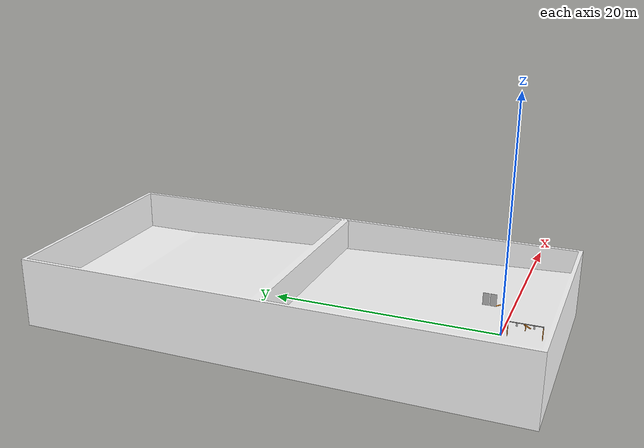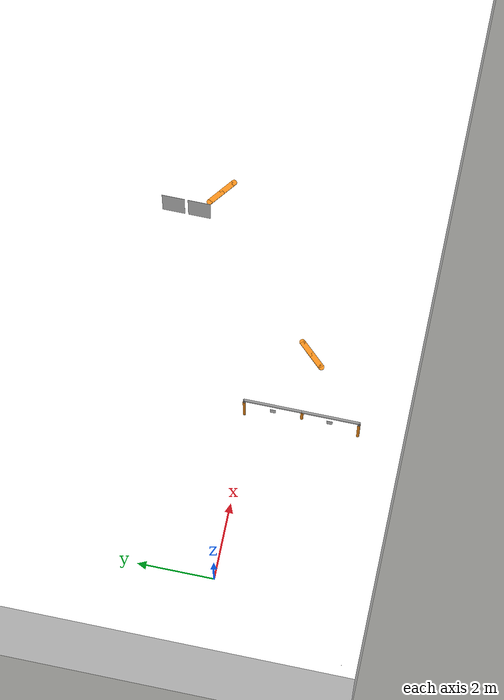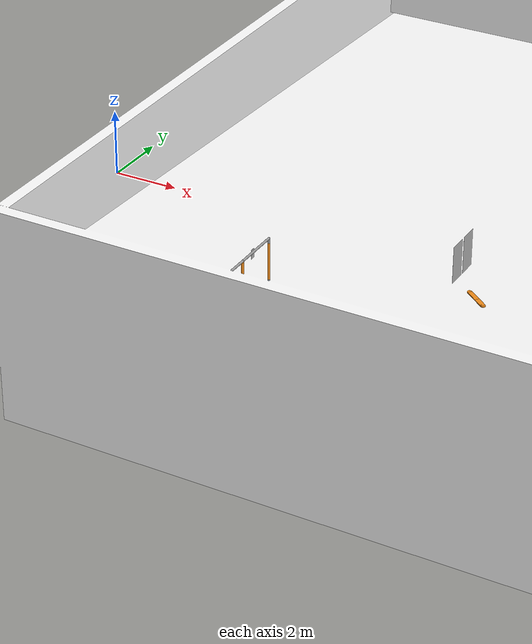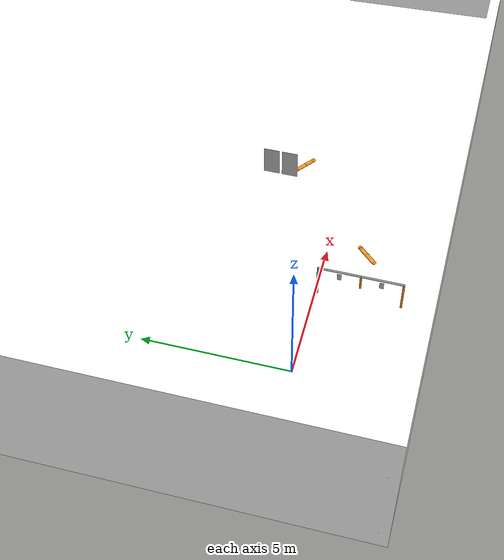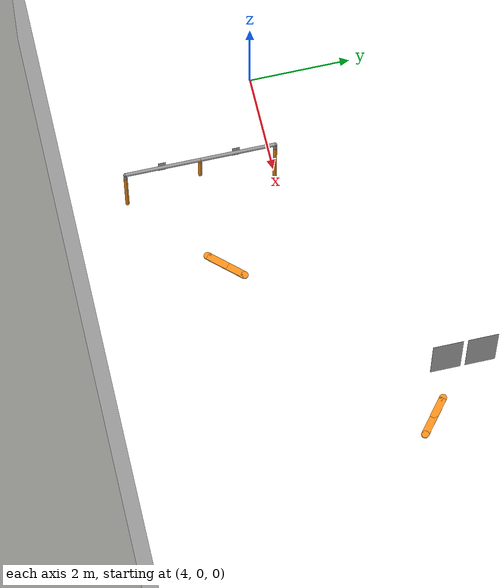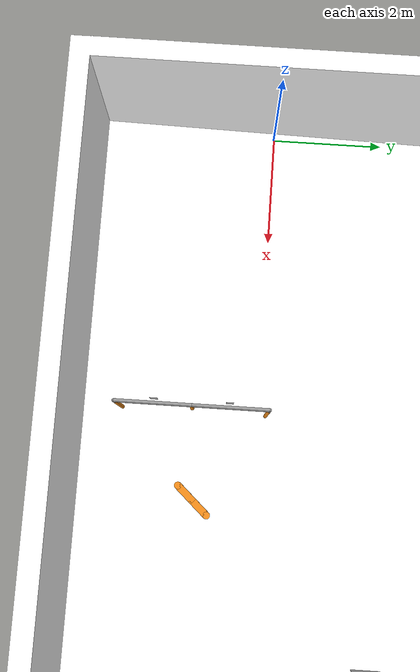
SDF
<sdf version="1.5">
 <world name="empty_underwater">
  <physics name="default_physics" default="true" type="ode">
   <max_step_size>0.002</max_step_size>
   <real_time_factor>1</real_time_factor>
   <real_time_update_rate>500</real_time_update_rate>
   <ode><solver><type>quick</type><iters>50</iters><sor>0.5</sor></solver></ode>
  </physics>
  <scene>
   <ambient>0.01 0.01 0.01 1.0</ambient>
   <sky><clouds><speed>0</speed></clouds></sky>
   <shadows>1</shadows>
   <fog>
    <color>0.05 0.4 0.5 1.0</color>
    <type>linear</type>
    <density>0.9</density>
    <start>0</start>
    <end>32</end>
   </fog>
   <origin_visual>true</origin_visual>
  </scene>
  <spherical_coordinates>
   <latitude_deg>56.71897669633431</latitude_deg>
   <longitude_deg>3.515625</longitude_deg>
  </spherical_coordinates>
  <include><uri>model://sun</uri><cast_shadows>false</cast_shadows></include>
  <light type="point" name="pool_light_1">
   <pose>1.5 1.4 -1.0 0 0 0</pose>
   <diffuse>.5 .5 .5 1</diffuse>
   <specular>.1 .1 .1 1</specular>
   <attenuation>
    <range>20</range>
    <constant>0.5</constant>
    <linear>0.01</linear>
    <quadratic>0</quadratic>
   </attenuation>
   <cast_shadows>false</cast_shadows>
  </light>
  <include><uri>model://pools/robosub2022_pool</uri><pose>10 21.5 0.25 3.14 0 0</pose></include>
  <include><name>gate</name><pose>5 -2 -1.0 0 0 0</pose><uri>model://2022/gate</uri></include>
  <include>
   <name>gate-bootlegger</name>
   <pose>4.9 -2.0 -1.15 0 0 0</pose>
   <uri>model://2022/gate-bootlegger</uri>
  </include>
  <include><name>gate-gman</name><pose>4.9 -0.5 -1.15 0 0 0</pose><uri>model://2022/gate-gman</uri></include>
  <include><name>path1</name><pose>7 -1 -2.1 0 0 2.4</pose><uri>model://2022/path</uri></include>
  <include>
   <name>buoy-bootlegger</name>
   <pose>10 2.55 -1.5 0 0 0</pose>
   <uri>model://2022/buoy-bootlegger</uri>
  </include>
  <include><name>buoy-gman</name><pose>10 3.25 -1.5 0 0 0</pose><uri>model://2022/buoy-gman</uri></include>
  <include><name>path2</name><pose>11 2.0 -2.3 0 0 0.9</pose><uri>model://2022/path</uri></include>
  <light type="directional" name="sun4">
   <pose>8 -19 10 1.75 0 2.9</pose>
   <diffuse>0.8 0.8 0.8 1</diffuse>
   <specular>0.2 0.2 0.2 1</specular>
   <attenuation>
    <range>1000</range>
    <constant>0.9</constant>
    <linear>0.01</linear>
    <quadratic>0.001</quadratic>
   </attenuation>
   <direction>-0.5 0.1 -0.9</direction>
  </light>
  <plugin name="sc_interface" filename="libuuv_sc_ros_interface_plugin.so"/>
 </world>
</sdf>

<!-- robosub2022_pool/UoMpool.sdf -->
<sdf version='1.5'>

  <model name='uompool'>
    <pose>0 0 0.1 0 0 0</pose>
    <self_collide> 0 </self_collide>
    <static> 1</static>

    <link name='pool'>
      <pose>0 0 0.1 0 0 0</pose>
      <visual name='pool_visual'>
        <geometry>
            <mesh><uri>file://pools/robosub2022_pool/UoMpool.dae</uri></mesh>
        </geometry>
      </visual>
      <collision name='pool_collision'>
        <geometry>
            <mesh><uri>file://pools/robosub2022_pool/UoMpool.dae</uri></mesh>
        </geometry>
      </collision>
    </link>

  </model>
</sdf>

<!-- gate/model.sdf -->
<sdf version='1.6'>
  <model name='gate'>
    <link name='component_rt'>
      <inertial>
        <mass>10</mass>
        <inertia>
          <ixx>0.145833</ixx>
          <ixy>0</ixy>
          <ixz>0</ixz>
          <iyy>0.145833</iyy>
          <iyz>0</iyz>
          <izz>0.125</izz>
        </inertia>
        <pose>0 0 0 0 -0 0</pose>
      </inertial>
      <pose>0 1.52 -0.000146 1.5707 -0 0</pose>
      <self_collide>0</self_collide>
      <enable_wind>0</enable_wind>
      <kinematic>0</kinematic>
      <gravity>0</gravity>
      <visual name='visual'>
        <pose>0 0 0 0 -0 0</pose>
        <geometry>
          <cylinder>
            <radius>0.0381</radius>
            <length>1.52</length>
          </cylinder>
        </geometry>
        <material>
          <lighting>1</lighting>
          <script>
            <uri>file://media/materials/scripts/gazebo.material</uri>
            <name>Gazebo/Grey</name>
          </script>
          <shader type='pixel'/>
          <emissive>0 0 0 1</emissive>
        </material>
        <transparency>0</transparency>
        <cast_shadows>1</cast_shadows>
      </visual>
      <collision name='collision'>
        <laser_retro>0</laser_retro>
        <max_contacts>10</max_contacts>
        <pose>0 0 0 0 -0 0</pose>
        <geometry>
          <cylinder>
            <radius>0.0381</radius>
            <length>1.52</length>
          </cylinder>
        </geometry>
        <surface>
          <friction>
            <ode>
              <mu>1</mu>
              <mu2>1</mu2>
              <fdir1>0 0 0</fdir1>
              <slip1>0</slip1>
              <slip2>0</slip2>
            </ode>
            <torsional>
              <coefficient>1</coefficient>
              <patch_radius>0</patch_radius>
              <surface_radius>0</surface_radius>
              <use_patch_radius>1</use_patch_radius>
              <ode>
                <slip>0</slip>
              </ode>
            </torsional>
          </friction>
          <bounce>
            <restitution_coefficient>0</restitution_coefficient>
            <threshold>1e+06</threshold>
          </bounce>
          <contact>
            <collide_without_contact>0</collide_without_contact>
            <collide_without_contact_bitmask>1</collide_without_contact_bitmask>
            <collide_bitmask>1</collide_bitmask>
            <ode>
              <soft_cfm>0</soft_cfm>
              <soft_erp>0.2</soft_erp>
              <kp>1e+13</kp>
              <kd>1</kd>
              <max_vel>0.01</max_vel>
              <min_depth>0</min_depth>
            </ode>
            <bullet>
              <split_impulse>1</split_impulse>
              <split_impulse_penetration_threshold>-0.01</split_impulse_penetration_threshold>
              <soft_cfm>0</soft_cfm>
              <soft_erp>0.2</soft_erp>
              <kp>1e+13</kp>
              <kd>1</kd>
            </bullet>
          </contact>
        </surface>
      </collision>
    </link>
    <link name='component_lb'>
      <inertial>
        <mass>10</mass>
        <inertia>
          <ixx>0.145833</ixx>
          <ixy>0</ixy>
          <ixz>0</ixz>
          <iyy>0.145833</iyy>
          <iyz>0</iyz>
          <izz>0.125</izz>
        </inertia>
        <pose>0 0 0 0 -0 0</pose>
      </inertial>
      <pose>-0 -0.760073 -0.759927 0 -0 0</pose>
      <self_collide>0</self_collide>
      <enable_wind>0</enable_wind>
      <kinematic>0</kinematic>
      <gravity>0</gravity>
      <visual name='visual'>
        <pose>0 0 0 0 -0 0</pose>
        <geometry>
          <cylinder>
            <radius>0.0381</radius>
            <length>1.52</length>
          </cylinder>
        </geometry>
        <material>
          <lighting>1</lighting>
          <script>
            <uri>file://media/materials/scripts/gazebo.material</uri>
            <name>Gazebo/Grey</name>
          </script>
          <shader type='pixel'/>
          <emissive>0 0 0 1</emissive>
        </material>
        <transparency>0</transparency>
        <cast_shadows>1</cast_shadows>
      </visual>
      <collision name='collision'>
        <laser_retro>0</laser_retro>
        <max_contacts>10</max_contacts>
        <pose>0 0 0 0 -0 0</pose>
        <geometry>
          <cylinder>
            <radius>0.0381</radius>
            <length>1.52</length>
          </cylinder>
        </geometry>
        <surface>
          <friction>
            <ode>
              <mu>1</mu>
              <mu2>1</mu2>
              <fdir1>0 0 0</fdir1>
              <slip1>0</slip1>
              <slip2>0</slip2>
            </ode>
            <torsional>
              <coefficient>1</coefficient>
              <patch_radius>0</patch_radius>
              <surface_radius>0</surface_radius>
              <use_patch_radius>1</use_patch_radius>
              <ode>
                <slip>0</slip>
              </ode>
            </torsional>
          </friction>
          <bounce>
            <restitution_coefficient>0</restitution_coefficient>
            <threshold>1e+06</threshold>
          </bounce>
          <contact>
            <collide_without_contact>0</collide_without_contact>
            <collide_without_contact_bitmask>1</collide_without_contact_bitmask>
            <collide_bitmask>1</collide_bitmask>
            <ode>
              <soft_cfm>0</soft_cfm>
              <soft_erp>0.2</soft_erp>
              <kp>1e+13</kp>
              <kd>1</kd>
              <max_vel>0.01</max_vel>
              <min_depth>0</min_depth>
            </ode>
            <bullet>
              <split_impulse>1</split_impulse>
              <split_impulse_penetration_threshold>-0.01</split_impulse_penetration_threshold>
              <soft_cfm>0</soft_cfm>
              <soft_erp>0.2</soft_erp>
              <kp>1e+13</kp>
              <kd>1</kd>
            </bullet>
          </contact>
        </surface>
      </collision>
    </link>
    <link name='component_lt'>
      <inertial>
        <mass>10</mass>
        <inertia>
          <ixx>0.145833</ixx>
          <ixy>0</ixy>
          <ixz>0</ixz>
          <iyy>0.145833</iyy>
          <iyz>0</iyz>
          <izz>0.125</izz>
        </inertia>
        <pose>0 0 0 0 -0 0</pose>
      </inertial>
      <pose>0 0 0 1.5707 -0 0</pose>
      <self_collide>0</self_collide>
      <enable_wind>0</enable_wind>
      <kinematic>0</kinematic>
      <gravity>0</gravity>
      <visual name='visual'>
        <pose>0 0 0 0 -0 0</pose>
        <geometry>
          <cylinder>
            <radius>0.0381</radius>
            <length>1.52</length>
          </cylinder>
        </geometry>
        <material>
          <lighting>1</lighting>
          <script>
            <uri>file://media/materials/scripts/gazebo.material</uri>
            <name>Gazebo/Grey</name>
          </script>
          <shader type='pixel'/>
          <emissive>0 0 0 1</emissive>
        </material>
        <transparency>0</transparency>
        <cast_shadows>1</cast_shadows>
      </visual>
      <collision name='collision'>
        <laser_retro>0</laser_retro>
        <max_contacts>10</max_contacts>
        <pose>0 0 0 0 -0 0</pose>
        <geometry>
          <cylinder>
            <radius>0.0381</radius>
            <length>1.52</length>
          </cylinder>
        </geometry>
        <surface>
          <friction>
            <ode>
              <mu>1</mu>
              <mu2>1</mu2>
              <fdir1>0 0 0</fdir1>
              <slip1>0</slip1>
              <slip2>0</slip2>
            </ode>
            <torsional>
              <coefficient>1</coefficient>
              <patch_radius>0</patch_radius>
              <surface_radius>0</surface_radius>
              <use_patch_radius>1</use_patch_radius>
              <ode>
                <slip>0</slip>
              </ode>
            </torsional>
          </friction>
          <bounce>
            <restitution_coefficient>0</restitution_coefficient>
            <threshold>1e+06</threshold>
          </bounce>
          <contact>
            <collide_without_contact>0</collide_without_contact>
            <collide_without_contact_bitmask>1</collide_without_contact_bitmask>
            <collide_bitmask>1</collide_bitmask>
            <ode>
              <soft_cfm>0</soft_cfm>
              <soft_erp>0.2</soft_erp>
              <kp>1e+13</kp>
              <kd>1</kd>
              <max_vel>0.01</max_vel>
              <min_depth>0</min_depth>
            </ode>
            <bullet>
              <split_impulse>1</split_impulse>
              <split_impulse_penetration_threshold>-0.01</split_impulse_penetration_threshold>
              <soft_cfm>0</soft_cfm>
              <soft_erp>0.2</soft_erp>
              <kp>1e+13</kp>
              <kd>1</kd>
            </bullet>
          </contact>
        </surface>
      </collision>
    </link>
    <link name='component_rb'>
      <inertial>
        <mass>10</mass>
        <inertia>
          <ixx>0.145833</ixx>
          <ixy>0</ixy>
          <ixz>0</ixz>
          <iyy>0.145833</iyy>
          <iyz>0</iyz>
          <izz>0.125</izz>
        </inertia>
        <pose>0 0 0 0 -0 0</pose>
      </inertial>
      <pose>0 2.27993 -0.76022 0 -0 0</pose>
      <self_collide>0</self_collide>
      <enable_wind>0</enable_wind>
      <kinematic>0</kinematic>
      <gravity>0</gravity>
      <visual name='visual'>
        <pose>0 0 0 0 -0 0</pose>
        <geometry>
          <cylinder>
            <radius>0.0381</radius>
            <length>1.52</length>
          </cylinder>
        </geometry>
        <material>
          <lighting>1</lighting>
          <script>
            <uri>file://media/materials/scripts/gazebo.material</uri>
            <name>Gazebo/Grey</name>
          </script>
          <shader type='pixel'/>
          <emissive>0 0 0 1</emissive>
        </material>
        <transparency>0</transparency>
        <cast_shadows>1</cast_shadows>
      </visual>
      <collision name='collision'>
        <laser_retro>0</laser_retro>
        <max_contacts>10</max_contacts>
        <pose>0 0 0 0 -0 0</pose>
        <geometry>
          <cylinder>
            <radius>0.0381</radius>
            <length>1.52</length>
          </cylinder>
        </geometry>
        <surface>
          <friction>
            <ode>
              <mu>1</mu>
              <mu2>1</mu2>
              <fdir1>0 0 0</fdir1>
              <slip1>0</slip1>
              <slip2>0</slip2>
            </ode>
            <torsional>
              <coefficient>1</coefficient>
              <patch_radius>0</patch_radius>
              <surface_radius>0</surface_radius>
              <use_patch_radius>1</use_patch_radius>
              <ode>
                <slip>0</slip>
              </ode>
            </torsional>
          </friction>
          <bounce>
            <restitution_coefficient>0</restitution_coefficient>
            <threshold>1e+06</threshold>
          </bounce>
          <contact>
            <collide_without_contact>0</collide_without_contact>
            <collide_without_contact_bitmask>1</collide_without_contact_bitmask>
            <collide_bitmask>1</collide_bitmask>
            <ode>
              <soft_cfm>0</soft_cfm>
              <soft_erp>0.2</soft_erp>
              <kp>1e+13</kp>
              <kd>1</kd>
              <max_vel>0.01</max_vel>
              <min_depth>0</min_depth>
            </ode>
            <bullet>
              <split_impulse>1</split_impulse>
              <split_impulse_penetration_threshold>-0.01</split_impulse_penetration_threshold>
              <soft_cfm>0</soft_cfm>
              <soft_erp>0.2</soft_erp>
              <kp>1e+13</kp>
              <kd>1</kd>
            </bullet>
          </contact>
        </surface>
      </collision>
    </link>
    <link name='corner_l'>
      <inertial>
        <mass>1</mass>
        <inertia>
          <ixx>0.1</ixx>
          <ixy>0</ixy>
          <ixz>0</ixz>
          <iyy>0.1</iyy>
          <iyz>0</iyz>
          <izz>0.1</izz>
        </inertia>
        <pose>0 0 0 0 -0 0</pose>
      </inertial>
      <pose>-0 2.28 -0.000219 1.5707 -0 0</pose>
      <gravity>0</gravity>
      <self_collide>0</self_collide>
      <kinematic>0</kinematic>
      <enable_wind>0</enable_wind>
      <visual name='visual'>
        <pose>0 0 0 0 -0 0</pose>
        <geometry>
          <sphere>
            <radius>0.038</radius>
          </sphere>
        </geometry>
        <material>
          <lighting>1</lighting>
          <script>
            <uri>file://media/materials/scripts/gazebo.material</uri>
            <name>Gazebo/Grey</name>
          </script>
          <shader type='pixel'/>
          <emissive>0 0 0 1</emissive>
        </material>
        <transparency>0</transparency>
        <cast_shadows>1</cast_shadows>
      </visual>
      <collision name='collision'>
        <laser_retro>0</laser_retro>
        <max_contacts>10</max_contacts>
        <pose>0 0 0 0 -0 0</pose>
        <geometry>
          <sphere>
            <radius>0.0381</radius>
          </sphere>
        </geometry>
        <surface>
          <friction>
            <ode>
              <mu>1</mu>
              <mu2>1</mu2>
              <fdir1>0 0 0</fdir1>
              <slip1>0</slip1>
              <slip2>0</slip2>
            </ode>
            <torsional>
              <coefficient>1</coefficient>
              <patch_radius>0</patch_radius>
              <surface_radius>0</surface_radius>
              <use_patch_radius>1</use_patch_radius>
              <ode>
                <slip>0</slip>
              </ode>
            </torsional>
          </friction>
          <bounce>
            <restitution_coefficient>0</restitution_coefficient>
            <threshold>1e+06</threshold>
          </bounce>
          <contact>
            <collide_without_contact>0</collide_without_contact>
            <collide_without_contact_bitmask>1</collide_without_contact_bitmask>
            <collide_bitmask>1</collide_bitmask>
            <ode>
              <soft_cfm>0</soft_cfm>
              <soft_erp>0.2</soft_erp>
              <kp>1e+13</kp>
              <kd>1</kd>
              <max_vel>0.01</max_vel>
              <min_depth>0</min_depth>
            </ode>
            <bullet>
              <split_impulse>1</split_impulse>
              <split_impulse_penetration_threshold>-0.01</split_impulse_penetration_threshold>
              <soft_cfm>0</soft_cfm>
              <soft_erp>0.2</soft_erp>
              <kp>1e+13</kp>
              <kd>1</kd>
            </bullet>
          </contact>
        </surface>
      </collision>
    </link>
    <link name='corner_r'>
      <inertial>
        <mass>1</mass>
        <inertia>
          <ixx>0.1</ixx>
          <ixy>0</ixy>
          <ixz>0</ixz>
          <iyy>0.1</iyy>
          <iyz>0</iyz>
          <izz>0.1</izz>
        </inertia>
        <pose>0 0 0 0 -0 0</pose>
      </inertial>
      <pose>0 -0.76 -0 0 -0 0</pose>
      <gravity>0</gravity>
      <self_collide>0</self_collide>
      <kinematic>0</kinematic>
      <enable_wind>0</enable_wind>
      <visual name='visual'>
        <pose>0 0 0 0 -0 0</pose>
        <geometry>
          <sphere>
            <radius>0.038</radius>
          </sphere>
        </geometry>
        <material>
          <lighting>1</lighting>
          <script>
            <uri>file://media/materials/scripts/gazebo.material</uri>
            <name>Gazebo/Grey</name>
          </script>
          <shader type='pixel'/>
          <emissive>0 0 0 1</emissive>
        </material>
        <transparency>0</transparency>
        <cast_shadows>1</cast_shadows>
      </visual>
      <collision name='collision'>
        <laser_retro>0</laser_retro>
        <max_contacts>10</max_contacts>
        <pose>0 0 0 0 -0 0</pose>
        <geometry>
          <sphere>
            <radius>0.0381</radius>
          </sphere>
        </geometry>
        <surface>
          <friction>
            <ode>
              <mu>1</mu>
              <mu2>1</mu2>
              <fdir1>0 0 0</fdir1>
              <slip1>0</slip1>
              <slip2>0</slip2>
            </ode>
            <torsional>
              <coefficient>1</coefficient>
              <patch_radius>0</patch_radius>
              <surface_radius>0</surface_radius>
              <use_patch_radius>1</use_patch_radius>
              <ode>
                <slip>0</slip>
              </ode>
            </torsional>
          </friction>
          <bounce>
            <restitution_coefficient>0</restitution_coefficient>
            <threshold>1e+06</threshold>
          </bounce>
          <contact>
            <collide_without_contact>0</collide_without_contact>
            <collide_without_contact_bitmask>1</collide_without_contact_bitmask>
            <collide_bitmask>1</collide_bitmask>
            <ode>
              <soft_cfm>0</soft_cfm>
              <soft_erp>0.2</soft_erp>
              <kp>1e+13</kp>
              <kd>1</kd>
              <max_vel>0.01</max_vel>
              <min_depth>0</min_depth>
            </ode>
            <bullet>
              <split_impulse>1</split_impulse>
              <split_impulse_penetration_threshold>-0.01</split_impulse_penetration_threshold>
              <soft_cfm>0</soft_cfm>
              <soft_erp>0.2</soft_erp>
              <kp>1e+13</kp>
              <kd>1</kd>
            </bullet>
          </contact>
        </surface>
      </collision>
    </link>
    <link name='jacket_l'>
      <inertial>
        <mass>10</mass>
        <inertia>
          <ixx>0.145833</ixx>
          <ixy>0</ixy>
          <ixz>0</ixz>
          <iyy>0.145833</iyy>
          <iyz>0</iyz>
          <izz>0.125</izz>
        </inertia>
        <pose>0 0 0 0 -0 0</pose>
      </inertial>
      <pose>-0 -0.760073 -0.759927 0 -0 0</pose>
      <self_collide>0</self_collide>
      <enable_wind>0</enable_wind>
      <kinematic>0</kinematic>
      <gravity>0</gravity>
      <visual name='visual'>
        <pose>0 0 0 0 -0 0</pose>
        <geometry>
          <cylinder>
            <radius>0.039</radius>
            <length>1.219</length>
          </cylinder>
        </geometry>
        <material>
          <lighting>1</lighting>
          <script>
            <uri>file://media/materials/scripts/gazebo.material</uri>
            <name>Gazebo/Orange</name>
          </script>
          <shader type='pixel'/>
          <emissive>0 0 0 1</emissive>
        </material>
        <transparency>0</transparency>
        <cast_shadows>1</cast_shadows>
      </visual>
      <collision name='collision'>
        <laser_retro>0</laser_retro>
        <max_contacts>10</max_contacts>
        <pose>0 0 0 0 -0 0</pose>
        <geometry>
          <cylinder>
            <radius>0</radius>
            <length>0</length>
          </cylinder>
        </geometry>
        <surface>
          <friction>
            <ode>
              <mu>1</mu>
              <mu2>1</mu2>
              <fdir1>0 0 0</fdir1>
              <slip1>0</slip1>
              <slip2>0</slip2>
            </ode>
            <torsional>
              <coefficient>1</coefficient>
              <patch_radius>0</patch_radius>
              <surface_radius>0</surface_radius>
              <use_patch_radius>1</use_patch_radius>
              <ode>
                <slip>0</slip>
              </ode>
            </torsional>
          </friction>
          <bounce>
            <restitution_coefficient>0</restitution_coefficient>
            <threshold>1e+06</threshold>
          </bounce>
          <contact>
            <collide_without_contact>0</collide_without_contact>
            <collide_without_contact_bitmask>1</collide_without_contact_bitmask>
            <collide_bitmask>1</collide_bitmask>
            <ode>
              <soft_cfm>0</soft_cfm>
              <soft_erp>0.2</soft_erp>
              <kp>1e+13</kp>
              <kd>1</kd>
              <max_vel>0.01</max_vel>
              <min_depth>0</min_depth>
            </ode>
            <bullet>
              <split_impulse>1</split_impulse>
              <split_impulse_penetration_threshold>-0.01</split_impulse_penetration_threshold>
              <soft_cfm>0</soft_cfm>
              <soft_erp>0.2</soft_erp>
              <kp>1e+13</kp>
              <kd>1</kd>
            </bullet>
          </contact>
        </surface>
      </collision>
    </link>
    <link name='jacket_r'>
      <inertial>
        <mass>1</mass>
        <inertia>
          <ixx>0.145833</ixx>
          <ixy>0</ixy>
          <ixz>0</ixz>
          <iyy>0.145833</iyy>
          <iyz>0</iyz>
          <izz>0.125</izz>
        </inertia>
        <pose>0 0 0 0 -0 0</pose>
      </inertial>
      <pose>0 2.27993 -0.76022 0 -0 0</pose>
      <self_collide>0</self_collide>
      <enable_wind>0</enable_wind>
      <kinematic>0</kinematic>
      <gravity>0</gravity>
      <visual name='visual'>
        <pose>0 0 0 0 -0 0</pose>
        <geometry>
          <cylinder>
            <radius>0.039</radius>
            <length>1.219</length>
          </cylinder>
        </geometry>
        <material>
          <lighting>1</lighting>
          <script>
            <uri>file://media/materials/scripts/gazebo.material</uri>
            <name>Gazebo/Orange</name>
          </script>
          <shader type='pixel'/>
          <emissive>0 0 0 1</emissive>
        </material>
        <transparency>0</transparency>
        <cast_shadows>1</cast_shadows>
      </visual>
      <collision name='collision'>
        <laser_retro>0</laser_retro>
        <max_contacts>10</max_contacts>
        <pose>0 0 0 0 -0 0</pose>
        <geometry>
          <cylinder>
            <radius>0</radius>
            <length>0</length>
          </cylinder>
        </geometry>
        <surface>
          <friction>
            <ode>
              <mu>1</mu>
              <mu2>1</mu2>
              <fdir1>0 0 0</fdir1>
              <slip1>0</slip1>
              <slip2>0</slip2>
            </ode>
            <torsional>
              <coefficient>1</coefficient>
              <patch_radius>0</patch_radius>
              <surface_radius>0</surface_radius>
              <use_patch_radius>1</use_patch_radius>
              <ode>
                <slip>0</slip>
              </ode>
            </torsional>
          </friction>
          <bounce>
            <restitution_coefficient>0</restitution_coefficient>
            <threshold>1e+06</threshold>
          </bounce>
          <contact>
            <collide_without_contact>0</collide_without_contact>
            <collide_without_contact_bitmask>1</collide_without_contact_bitmask>
            <collide_bitmask>1</collide_bitmask>
            <ode>
              <soft_cfm>0</soft_cfm>
              <soft_erp>0.2</soft_erp>
              <kp>1e+13</kp>
              <kd>1</kd>
              <max_vel>0.01</max_vel>
              <min_depth>0</min_depth>
            </ode>
            <bullet>
              <split_impulse>1</split_impulse>
              <split_impulse_penetration_threshold>-0.01</split_impulse_penetration_threshold>
              <soft_cfm>0</soft_cfm>
              <soft_erp>0.2</soft_erp>
              <kp>1e+13</kp>
              <kd>1</kd>
            </bullet>
          </contact>
        </surface>
      </collision>
    </link>
    <link name='center_link'>
      <inertial>
        <mass>1</mass>
        <inertia>
          <ixx>0.145833</ixx>
          <ixy>0</ixy>
          <ixz>0</ixz>
          <iyy>0.145833</iyy>
          <iyz>0</iyz>
          <izz>0.125</izz>
        </inertia>
        <pose>0 0 0 0 -0 0</pose>
      </inertial>
      <pose>-0 0.75 -0.340029 3.1414 -0 0</pose>
      <gravity>0</gravity>
      <self_collide>0</self_collide>
      <kinematic>0</kinematic>
      <enable_wind>0</enable_wind>
      <visual name='visual'>
        <pose>0 0 0 0 -0 0</pose>
        <geometry>
          <cylinder>
            <radius>0.03</radius>
            <length>0.6096</length>
          </cylinder>
        </geometry>
        <material>
        <material>
          <lighting>1</lighting>
          <script>
            <uri>file://media/materials/scripts/gazebo.material</uri>
            <name>Gazebo/Orange</name>
          </script>
          <shader type='pixel'/>
          <emissive>0 0 0 1</emissive>
        </material>
        </material>
        <transparency>0</transparency>
        <cast_shadows>1</cast_shadows>
      </visual>
      <collision name='collision'>
        <laser_retro>0</laser_retro>
        <max_contacts>10</max_contacts>
        <pose>0 0 0 0 -0 0</pose>
        <geometry>
          <cylinder>
            <radius>0.03</radius>
            <length>0.6096</length>
          </cylinder>
        </geometry>
        <surface>
          <friction>
            <ode>
              <mu>1</mu>
              <mu2>1</mu2>
              <fdir1>0 0 0</fdir1>
              <slip1>0</slip1>
              <slip2>0</slip2>
            </ode>
            <torsional>
              <coefficient>1</coefficient>
              <patch_radius>0</patch_radius>
              <surface_radius>0</surface_radius>
              <use_patch_radius>1</use_patch_radius>
              <ode>
                <slip>0</slip>
              </ode>
            </torsional>
          </friction>
          <bounce>
            <restitution_coefficient>0</restitution_coefficient>
            <threshold>1e+06</threshold>
          </bounce>
          <contact>
            <collide_without_contact>0</collide_without_contact>
            <collide_without_contact_bitmask>1</collide_without_contact_bitmask>
            <collide_bitmask>1</collide_bitmask>
            <ode>
              <soft_cfm>0</soft_cfm>
              <soft_erp>0.2</soft_erp>
              <kp>1e+13</kp>
              <kd>1</kd>
              <max_vel>0.01</max_vel>
              <min_depth>0</min_depth>
            </ode>
            <bullet>
              <split_impulse>1</split_impulse>
              <split_impulse_penetration_threshold>-0.01</split_impulse_penetration_threshold>
              <soft_cfm>0</soft_cfm>
              <soft_erp>0.2</soft_erp>
              <kp>1e+13</kp>
              <kd>1</kd>
            </bullet>
          </contact>
        </surface>
      </collision>
    </link>
    <link name='jacket_c'>
      <inertial>
        <mass>10</mass>
        <inertia>
          <ixx>0.145833</ixx>
          <ixy>0</ixy>
          <ixz>0</ixz>
          <iyy>0.145833</iyy>
          <iyz>0</iyz>
          <izz>0.125</izz>
        </inertia>
        <pose>0 0 0 0 -0 0</pose>
      </inertial>
      <pose>-0 0.75 -0.340029 3.1414 -0 0</pose>
      <self_collide>0</self_collide>
      <enable_wind>0</enable_wind>
      <kinematic>0</kinematic>
      <gravity>0</gravity>
      <visual name='visual'>
        <pose>0 0 0 0 -0 0</pose>
        <geometry>
          <cylinder>
            <radius>0.039</radius>
            <length>0.6096</length>
          </cylinder>
        </geometry>
        <material>
          <lighting>1</lighting>
          <script>
            <uri>file://media/materials/scripts/gazebo.material</uri>
            <name>Gazebo/Orange</name>
          </script>
          <shader type='pixel'/>
          <emissive>0 0 0 1</emissive>
        </material>
        <transparency>0</transparency>
        <cast_shadows>1</cast_shadows>
      </visual>
      <collision name='collision'>
        <laser_retro>0</laser_retro>
        <max_contacts>10</max_contacts>
        <pose>0 0 0 0 -0 0</pose>
        <geometry>
          <cylinder>
            <radius>0</radius>
            <length>0</length>
          </cylinder>
        </geometry>
        <surface>
          <friction>
            <ode>
              <mu>1</mu>
              <mu2>1</mu2>
              <fdir1>0 0 0</fdir1>
              <slip1>0</slip1>
              <slip2>0</slip2>
            </ode>
            <torsional>
              <coefficient>1</coefficient>
              <patch_radius>0</patch_radius>
              <surface_radius>0</surface_radius>
              <use_patch_radius>1</use_patch_radius>
              <ode>
                <slip>0</slip>
              </ode>
            </torsional>
          </friction>
          <bounce>
            <restitution_coefficient>0</restitution_coefficient>
            <threshold>1e+06</threshold>
          </bounce>
          <contact>
            <collide_without_contact>0</collide_without_contact>
            <collide_without_contact_bitmask>1</collide_without_contact_bitmask>
            <collide_bitmask>1</collide_bitmask>
            <ode>
              <soft_cfm>0</soft_cfm>
              <soft_erp>0.2</soft_erp>
              <kp>1e+13</kp>
              <kd>1</kd>
              <max_vel>0.01</max_vel>
              <min_depth>0</min_depth>
            </ode>
            <bullet>
              <split_impulse>1</split_impulse>
              <split_impulse_penetration_threshold>-0.01</split_impulse_penetration_threshold>
              <soft_cfm>0</soft_cfm>
              <soft_erp>0.2</soft_erp>
              <kp>1e+13</kp>
              <kd>1</kd>
            </bullet>
          </contact>
        </surface>
      </collision>
    </link>
    <joint name='center_joint' type='fixed'>
      <parent>component_lt</parent>
      <child>center_link</child>
      <pose>0 0 0 0 -0 0</pose>
      <physics>
        <ode>
          <limit>
            <cfm>0</cfm>
            <erp>0.2</erp>
          </limit>
          <suspension>
            <cfm>0</cfm>
            <erp>0.2</erp>
          </suspension>
        </ode>
      </physics>
    </joint>
    <joint name='component_lt_lb' type='fixed'>
      <parent>component_lt</parent>
      <child>component_lb</child>
      <pose>0 0 0 0 -0 0</pose>
      <physics>
        <ode>
          <limit>
            <cfm>0</cfm>
            <erp>0.2</erp>
          </limit>
          <suspension>
            <cfm>0</cfm>
            <erp>0.2</erp>
          </suspension>
        </ode>
      </physics>
    </joint>
    <joint name='component_lt_rt' type='fixed'>
      <parent>component_lt</parent>
      <child>component_rt</child>
      <pose>0 0 0 0 -0 0</pose>
      <physics>
        <ode>
          <limit>
            <cfm>0</cfm>
            <erp>0.2</erp>
          </limit>
          <suspension>
            <cfm>0</cfm>
            <erp>0.2</erp>
          </suspension>
        </ode>
      </physics>
    </joint>
    <joint name='component_rt_rb' type='fixed'>
      <parent>component_rt</parent>
      <child>component_rb</child>
      <pose>0 0 0 0 -0 0</pose>
      <physics>
        <ode>
          <limit>
            <cfm>0</cfm>
            <erp>0.2</erp>
          </limit>
          <suspension>
            <cfm>0</cfm>
            <erp>0.2</erp>
          </suspension>
        </ode>
      </physics>
    </joint>
    <joint name='corner_joint_l' type='fixed'>
      <parent>component_lt</parent>
      <child>corner_l</child>
      <pose>0 0 0 0 -0 0</pose>
      <physics>
        <ode>
          <limit>
            <cfm>0</cfm>
            <erp>0.2</erp>
          </limit>
          <suspension>
            <cfm>0</cfm>
            <erp>0.2</erp>
          </suspension>
        </ode>
      </physics>
    </joint>
    <joint name='corner_joint_r' type='fixed'>
      <parent>component_rt</parent>
      <child>corner_r</child>
      <pose>0 0 0 0 -0 0</pose>
      <physics>
        <ode>
          <limit>
            <cfm>0</cfm>
            <erp>0.2</erp>
          </limit>
          <suspension>
            <cfm>0</cfm>
            <erp>0.2</erp>
          </suspension>
        </ode>
      </physics>
    </joint>
    <joint name='jacket_joint_l' type='fixed'>
      <parent>component_lb</parent>
      <child>jacket_l</child>
      <pose>0 0 0 0 -0 0</pose>
      <physics>
        <ode>
          <limit>
            <cfm>0</cfm>
            <erp>0.2</erp>
          </limit>
          <suspension>
            <cfm>0</cfm>
            <erp>0.2</erp>
          </suspension>
        </ode>
      </physics>
    </joint>
    <joint name='jacket_joint_r' type='fixed'>
      <parent>component_rb</parent>
      <child>jacket_r</child>
      <pose>0 0 0 0 -0 0</pose>
      <physics>
        <ode>
          <limit>
            <cfm>0</cfm>
            <erp>0.2</erp>
          </limit>
          <suspension>
            <cfm>0</cfm>
            <erp>0.2</erp>
          </suspension>
        </ode>
      </physics>
    </joint>
    <static>1</static>
    <allow_auto_disable>1</allow_auto_disable>
  </model>
</sdf>

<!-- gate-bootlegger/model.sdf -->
<sdf version='1.6'>
    <model name="gate-bootlegger">
        <link name="base_link">
            <pose>0 0 0 0 0 0</pose>
            <gravity>0</gravity>
            <inertial>
                <mass>1</mass>
            </inertial>
            <visual name='cube_visual'>
                <geometry>
                    <box>
                        <size>0.001 0.1524 0.3048</size>
                    </box>
                </geometry>
                <material>
                    <color rgba="0.5 0.5 0.5 0.0"/>
                    <script>
                        <uri>model://2022/gate-bootlegger/materials/scripts</uri>
                        <uri>model://2022/gate-bootlegger/materials/textures</uri>
                        <name>gateBootlegger/Diffuse</name>
                    </script>
                </material>
            </visual>
            <collision name='cube_collision'>
                <geometry>
                    <box>
                        <size>0.001 1 1</size>
                    </box>
                </geometry>
            </collision>
        </link>
    </model>
</sdf>

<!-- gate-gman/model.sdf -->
<sdf version='1.6'>
    <model name="gate-gman">
        <link name="base_link">
            <pose>0 0 0 0 0 0</pose>
            <gravity>0</gravity>
            <inertial>
                <mass>1</mass>
            </inertial>
            <visual name='cube_visual'>
                <geometry>
                    <box>
                        <size>0.001 0.1524 0.3048</size>
                    </box>
                </geometry>
                <material>
                    <color rgba="0.5 0.5 0.5 0.0"/>
                    <script>
                        <uri>model://2022/gate-gman/materials/scripts</uri>
                        <uri>model://2022/gate-gman/materials/textures</uri>
                        <name>gateGman/Diffuse</name>
                    </script>
                </material>
            </visual>
            <collision name='cube_collision'>
                <geometry>
                    <box>
                        <size>0.001 1 1</size>
                    </box>
                </geometry>
            </collision>
        </link>
    </model>
</sdf>

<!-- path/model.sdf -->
<sdf version='1.6'>
  <model name='crooked_path'>

    <pose> 0 0 0 0 0 0 </pose>
    <static>1</static>
    <self_collide>0</self_collide>

    <link name='round0'>
      <pose>0 0.625 0 0 0 0</pose>
      <visual name='visual'>
        <pose frame=''>0 0 0 0 -0 0</pose>
        <geometry>
          <cylinder>
            <radius>0.0762</radius>
            <length>0.026174</length>
          </cylinder>
        </geometry>
        <material>
          <script>
            <uri>file://media/materials/scripts/gazebo.material</uri>
            <name>Gazebo/Orange</name>
          </script>
        </material>
      </visual>
      <collision name='collision'>
        <laser_retro>0</laser_retro>
        <max_contacts>10</max_contacts>
        <pose frame=''>0 0 0 0 -0 0</pose>
        <geometry>
          <cylinder>
            <radius>0.0762</radius>
            <length>0.026174</length>
          </cylinder>
        </geometry>
      </collision>
    </link>

    <link name='path0'>
      <pose>0 0 0 0 0 0</pose>
      <visual name='visual'>
        <pose frame=''>0 0 0 0 -0 0</pose>
        <geometry>
          <box>
            <size>0.1524 0.4572 0.026174</size>
          </box>
        </geometry>
        <material>
          <script>
            <uri>file://media/materials/scripts/gazebo.material</uri>
            <name>Gazebo/Orange</name>
          </script>
        </material>
      </visual>
      <collision name='collision'>
        <laser_retro>0</laser_retro>
        <max_contacts>10</max_contacts>
        <pose frame=''>0 0 0 0 -0 0</pose>
        <geometry>
          <box>
            <size>0.1524 0.4572 0.026174</size>
          </box>
        </geometry>
      </collision>
    </link>

    <link name='path1'>
      <pose>0 0 0 0 0 0</pose>

      <visual name='visual'>
        <pose frame=''>0 0.39 0 0 -0 0</pose>
        <geometry>
          <box>
            <size>0.1524 0.4572 0.026174</size>
          </box>
        </geometry>
        <material>
          <script>
            <uri>file://media/materials/scripts/gazebo.material</uri>
            <name>Gazebo/Orange</name>
          </script>
        </material>
      </visual>

      <collision name='collision'>
        <laser_retro>0</laser_retro>
        <max_contacts>10</max_contacts>
        <pose frame=''>0 0 0 0 -0 0</pose>
        <geometry>
          <box>
            <size>0.1524 0.4572 0.026174</size>
          </box>
        </geometry>
      </collision>
    </link>

    <link name='round1'>
      <pose>0 -0.225 0 0 0 0</pose>
      <visual name='visual'>
        <pose frame=''>0 0 0 0 -0 0</pose>
        <geometry>
          <cylinder>
            <radius>0.0762</radius>
            <length>0.026174</length>
          </cylinder>
        </geometry>
        <material>
          <script>
            <uri>file://media/materials/scripts/gazebo.material</uri>
            <name>Gazebo/Orange</name>
          </script>
        </material>
      </visual>
      <collision name='collision'>
        <laser_retro>0</laser_retro>
        <max_contacts>10</max_contacts>
        <pose frame=''>0 0 0 0 -0 0</pose>
        <geometry>
          <cylinder>
            <radius>0.0762</radius>
            <length>0.026174</length>
          </cylinder>
        </geometry>
      </collision>
    </link>

  </model>

</sdf>

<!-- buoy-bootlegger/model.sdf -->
<sdf version='1.6'>
    <model name="buoy-bootlegger">
        <static>true</static>
        <link name="base_link">
            <pose>0 0 0 0 0 0</pose>
            <gravity>0</gravity>
            <inertial>
                <mass>1</mass>
            </inertial>
            <visual name='cube_visual'>
                <geometry>
                    <box>
                        <size>0.001 0.6096 1.2192</size>
                    </box>
                </geometry>
                <material>
                    <color rgba="0.5 0.5 0.5 0.0"/>
                    <script>
                        <uri>model://2022/buoy-bootlegger/materials/scripts</uri>
                        <uri>model://2022/buoy-bootlegger/materials/textures</uri>
                        <name>buoyBootlegger/Diffuse</name>
                    </script>
                </material>
            </visual>
            <collision name='cube_collision'>
                <geometry>
                    <box>
                        <size>0.001 1 1</size>
                    </box>
                </geometry>
            </collision>
        </link>
    </model>
</sdf>

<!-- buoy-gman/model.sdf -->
<sdf version='1.6'>
    <model name="buoy-gman">
        <static>true</static>
        <link name="base_link">
            <pose>0 0 0 0 0 0</pose>
            <gravity>0</gravity>
            <inertial>
                <mass>100</mass>
            </inertial>
            <visual name='cube_visual'>
                <geometry>
                    <box>
                        <size>0.001 0.6096 1.2192</size>
                    </box>
                </geometry>
                <material>
                    <color rgba="0.5 0.5 0.5 0.0"/>
                    <script>
                        <uri>model://2022/buoy-gman/materials/scripts</uri>
                        <uri>model://2022/buoy-gman/materials/textures</uri>
                        <name>buoyGman/Diffuse</name>
                    </script>
                </material>
            </visual>
            <collision name='cube_collision'>
                <geometry>
                    <box>
                        <size>0.001 1 1</size>
                    </box>
                </geometry>
            </collision>
        </link>
    </model>
</sdf>
